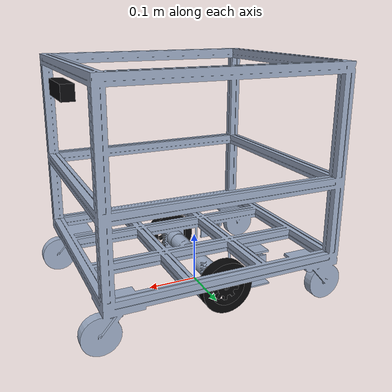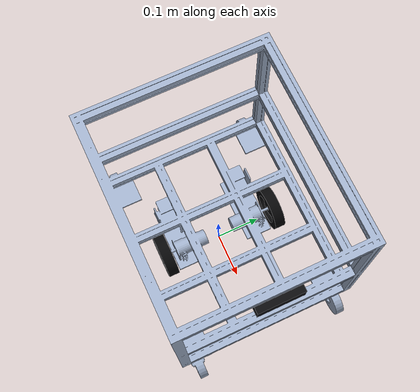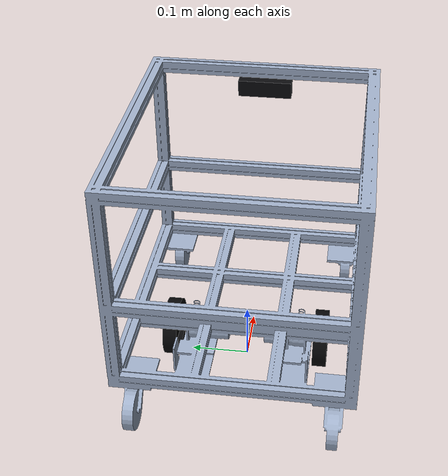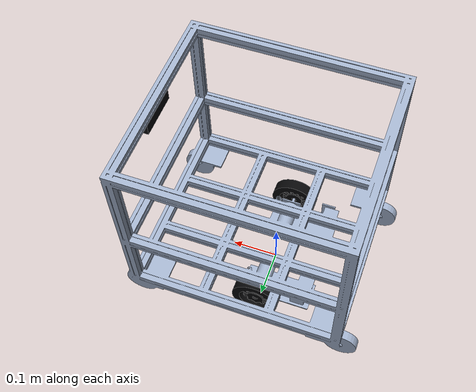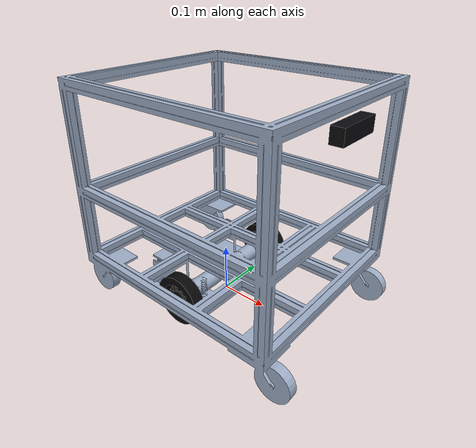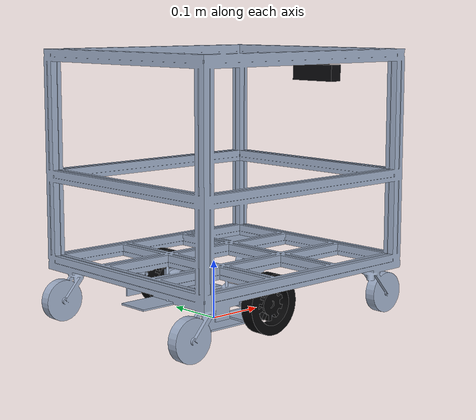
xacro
<?xml version="1.0"?>
<robot xmlns:xacro="http://www.ros.org/wiki/xacro" name="mobile_robot">
  <!-- Managed source. Expanded URDF files are generated artifacts; do not edit or commit them. -->
  <xacro:arg name="base_link_z" default="0.050"/>
  <xacro:arg name="camera_x" default="0.250"/>
  <xacro:arg name="camera_y" default="0.000"/>
  <xacro:arg name="camera_z" default="0.360"/>
  <xacro:arg name="camera_roll" default="0.0"/>
  <xacro:arg name="camera_pitch" default="0.0"/>
  <xacro:arg name="camera_yaw" default="0.0"/>
  <xacro:arg name="camera_depth" default="0.024"/>
  <xacro:arg name="camera_width" default="0.094"/>
  <xacro:arg name="camera_height" default="0.029"/>
  <xacro:arg name="chassis_length" default="0.450"/>
  <xacro:arg name="chassis_width" default="0.400"/>
  <xacro:arg name="chassis_height" default="0.368"/>
  <xacro:arg name="chassis_centre_x" default="0.025"/>
  <xacro:arg name="chassis_centre_y" default="0.000"/>
  <xacro:arg name="chassis_centre_z" default="0.222517313"/>
  <xacro:arg name="wheel_separation" default="0.264"/>
  <xacro:arg name="wheel_radius" default="0.050"/>
  <xacro:arg name="wheel_width" default="0.024"/>
  <xacro:arg name="cart_mesh_x" default="0.025"/>
  <xacro:arg name="cart_mesh_y" default="0.000"/>
  <xacro:arg name="cart_mesh_z" default="-0.043482687"/>
  <xacro:arg name="mesh_scale" default="0.001"/>
  <xacro:arg name="mesh_prefix" default="package://mr_description"/>
  <!-- IMU mount measured 2026-10-31 (config/robot_params.yaml imu_*). RPY -1.0/2.1/177.5 deg in radians. -->
  <xacro:arg name="imu_x" default="0.010"/>
  <xacro:arg name="imu_y" default="-0.160"/>
  <xacro:arg name="imu_z" default="0.090"/>
  <xacro:arg name="imu_roll" default="-0.017453293"/>
  <xacro:arg name="imu_pitch" default="0.036651914"/>
  <xacro:arg name="imu_yaw" default="3.097959422"/>
  <!-- RPLIDAR C1 scan origin (config/robot_params.yaml lidar_*). Yaw 177.5 deg in radians. -->
  <xacro:arg name="lidar_x" default="0.018"/>
  <xacro:arg name="lidar_y" default="-0.004"/>
  <xacro:arg name="lidar_z" default="0.200"/>
  <xacro:arg name="lidar_roll" default="0.0"/>
  <xacro:arg name="lidar_pitch" default="0.0"/>
  <xacro:arg name="lidar_yaw" default="3.097959422"/>
  <!-- 8.6 + 0.5 + 0.5 + 0.2 = measured complete-robot mass 9.8 kg. -->
  <xacro:arg name="chassis_mass" default="8.6"/>
  <xacro:arg name="wheel_mass" default="0.5"/>
  <xacro:arg name="camera_mass" default="0.2"/>

  <xacro:property name="base_link_z_v" value="$(arg base_link_z)"/>
  <xacro:property name="camera_x_v" value="$(arg camera_x)"/>
  <xacro:property name="camera_y_v" value="$(arg camera_y)"/>
  <xacro:property name="camera_z_v" value="$(arg camera_z)"/>
  <xacro:property name="camera_roll_v" value="$(arg camera_roll)"/>
  <xacro:property name="camera_pitch_v" value="$(arg camera_pitch)"/>
  <xacro:property name="camera_yaw_v" value="$(arg camera_yaw)"/>
  <xacro:property name="camera_depth_v" value="$(arg camera_depth)"/>
  <xacro:property name="camera_width_v" value="$(arg camera_width)"/>
  <xacro:property name="camera_height_v" value="$(arg camera_height)"/>
  <xacro:property name="chassis_length_v" value="$(arg chassis_length)"/>
  <xacro:property name="chassis_width_v" value="$(arg chassis_width)"/>
  <xacro:property name="chassis_height_v" value="$(arg chassis_height)"/>
  <xacro:property name="chassis_centre_x_v" value="$(arg chassis_centre_x)"/>
  <xacro:property name="chassis_centre_y_v" value="$(arg chassis_centre_y)"/>
  <xacro:property name="chassis_centre_z_v" value="$(arg chassis_centre_z)"/>
  <xacro:property name="wheel_separation_v" value="$(arg wheel_separation)"/>
  <xacro:property name="wheel_radius_v" value="$(arg wheel_radius)"/>
  <xacro:property name="wheel_width_v" value="$(arg wheel_width)"/>
  <xacro:property name="cart_mesh_x_v" value="$(arg cart_mesh_x)"/>
  <xacro:property name="cart_mesh_y_v" value="$(arg cart_mesh_y)"/>
  <xacro:property name="cart_mesh_z_v" value="$(arg cart_mesh_z)"/>
  <xacro:property name="mesh_scale_v" value="$(arg mesh_scale)"/>
  <xacro:property name="chassis_mass_v" value="$(arg chassis_mass)"/>
  <xacro:property name="wheel_mass_v" value="$(arg wheel_mass)"/>
  <xacro:property name="camera_mass_v" value="$(arg camera_mass)"/>
  <xacro:property name="imu_x_v" value="$(arg imu_x)"/>
  <xacro:property name="imu_y_v" value="$(arg imu_y)"/>
  <xacro:property name="imu_z_v" value="$(arg imu_z)"/>
  <xacro:property name="imu_roll_v" value="$(arg imu_roll)"/>
  <xacro:property name="imu_pitch_v" value="$(arg imu_pitch)"/>
  <xacro:property name="imu_yaw_v" value="$(arg imu_yaw)"/>
  <xacro:property name="lidar_x_v" value="$(arg lidar_x)"/>
  <xacro:property name="lidar_y_v" value="$(arg lidar_y)"/>
  <xacro:property name="lidar_z_v" value="$(arg lidar_z)"/>
  <xacro:property name="lidar_roll_v" value="$(arg lidar_roll)"/>
  <xacro:property name="lidar_pitch_v" value="$(arg lidar_pitch)"/>
  <xacro:property name="lidar_yaw_v" value="$(arg lidar_yaw)"/>

  <material name="aluminium">
    <color rgba="0.62 0.68 0.78 1.0"/>
  </material>
  <material name="rubber">
    <color rgba="0.025 0.025 0.03 1.0"/>
  </material>
  <material name="camera_black">
    <color rgba="0.04 0.04 0.05 1.0"/>
  </material>

  <xacro:macro name="box_inertial" params="mass x y z origin_x origin_y origin_z">
    <inertial>
      <origin xyz="${origin_x} ${origin_y} ${origin_z}" rpy="0 0 0"/>
      <mass value="${mass}"/>
      <inertia
        ixx="${mass * (y * y + z * z) / 12.0}"
        ixy="0.0" ixz="0.0"
        iyy="${mass * (x * x + z * z) / 12.0}"
        iyz="0.0"
        izz="${mass * (x * x + y * y) / 12.0}"/>
    </inertial>
  </xacro:macro>

  <xacro:macro name="drive_wheel" params="side y">
    <link name="${side}_wheel_link">
      <visual>
        <origin xyz="0 0 0" rpy="0 0 0"/>
        <geometry>
          <mesh filename="$(arg mesh_prefix)/meshes/drive_wheel.stl"
                scale="${mesh_scale_v} ${mesh_scale_v} ${mesh_scale_v}"/>
        </geometry>
        <material name="rubber"/>
      </visual>
      <collision>
        <origin xyz="0 0 0" rpy="${pi / 2.0} 0 0"/>
        <geometry>
          <cylinder radius="${wheel_radius_v}" length="${wheel_width_v}"/>
        </geometry>
      </collision>
      <inertial>
        <origin xyz="0 0 0" rpy="0 0 0"/>
        <mass value="${wheel_mass_v}"/>
        <inertia
          ixx="${wheel_mass_v * (3.0 * wheel_radius_v * wheel_radius_v + wheel_width_v * wheel_width_v) / 12.0}"
          ixy="0.0" ixz="0.0"
          iyy="${wheel_mass_v * wheel_radius_v * wheel_radius_v / 2.0}"
          iyz="0.0"
          izz="${wheel_mass_v * (3.0 * wheel_radius_v * wheel_radius_v + wheel_width_v * wheel_width_v) / 12.0}"/>
      </inertial>
    </link>
    <joint name="${side}_wheel_joint" type="continuous">
      <parent link="base_link"/>
      <child link="${side}_wheel_link"/>
      <origin xyz="0 ${y} 0" rpy="0 0 0"/>
      <axis xyz="0 1 0"/>
      <limit effort="15.0" velocity="20.0"/>
      <dynamics damping="0.0" friction="0.0"/>
    </joint>
  </xacro:macro>

  <link name="base_footprint"/>

  <link name="base_link">
    <visual>
      <origin xyz="${cart_mesh_x_v} ${cart_mesh_y_v} ${cart_mesh_z_v}" rpy="0 0 0"/>
      <geometry>
        <mesh filename="$(arg mesh_prefix)/meshes/cart_frame.stl"
              scale="${mesh_scale_v} ${mesh_scale_v} ${mesh_scale_v}"/>
      </geometry>
      <material name="aluminium"/>
    </visual>
    <collision>
      <origin xyz="${chassis_centre_x_v} ${chassis_centre_y_v} ${chassis_centre_z_v}" rpy="0 0 0"/>
      <geometry>
        <box size="${chassis_length_v} ${chassis_width_v} ${chassis_height_v}"/>
      </geometry>
    </collision>
    <xacro:box_inertial
      mass="${chassis_mass_v}"
      x="${chassis_length_v}" y="${chassis_width_v}" z="${chassis_height_v}"
      origin_x="${chassis_centre_x_v}" origin_y="${chassis_centre_y_v}" origin_z="${chassis_centre_z_v}"/>
  </link>

  <joint name="base_footprint_joint" type="fixed">
    <parent link="base_footprint"/>
    <child link="base_link"/>
    <origin xyz="0 0 ${base_link_z_v}" rpy="0 0 0"/>
  </joint>

  <xacro:drive_wheel side="left" y="${wheel_separation_v / 2.0}"/>
  <xacro:drive_wheel side="right" y="${-wheel_separation_v / 2.0}"/>

  <link name="camera_link">
    <visual>
      <origin xyz="0 0 0" rpy="0 0 0"/>
      <geometry>
        <box size="${camera_depth_v} ${camera_width_v} ${camera_height_v}"/>
      </geometry>
      <material name="camera_black"/>
    </visual>
    <collision>
      <origin xyz="0 0 0" rpy="0 0 0"/>
      <geometry>
        <box size="${camera_depth_v} ${camera_width_v} ${camera_height_v}"/>
      </geometry>
    </collision>
    <xacro:box_inertial
      mass="${camera_mass_v}"
      x="${camera_depth_v}" y="${camera_width_v}" z="${camera_height_v}"
      origin_x="0" origin_y="0" origin_z="0"/>
  </link>

  <joint name="camera_joint" type="fixed">
    <parent link="base_link"/>
    <child link="camera_link"/>
    <origin xyz="${camera_x_v} ${camera_y_v} ${camera_z_v}"
            rpy="${camera_roll_v} ${camera_pitch_v} ${camera_yaw_v}"/>
  </joint>

  <link name="camera_optical_frame"/>
  <joint name="camera_optical_joint" type="fixed">
    <parent link="camera_link"/>
    <child link="camera_optical_frame"/>
    <!-- optical +Z=forward, +X=right, +Y=down from robot +X/+Y/+Z -->
    <origin xyz="0 0 0" rpy="${-pi / 2.0} 0 ${-pi / 2.0}"/>
  </joint>

  <link name="imu_link"/>
  <joint name="imu_joint" type="fixed">
    <parent link="base_link"/>
    <child link="imu_link"/>
    <origin xyz="${imu_x_v} ${imu_y_v} ${imu_z_v}"
            rpy="${imu_roll_v} ${imu_pitch_v} ${imu_yaw_v}"/>
  </joint>

  <link name="laser_link"/>
  <joint name="laser_joint" type="fixed">
    <parent link="base_link"/>
    <child link="laser_link"/>
    <origin xyz="${lidar_x_v} ${lidar_y_v} ${lidar_z_v}"
            rpy="${lidar_roll_v} ${lidar_pitch_v} ${lidar_yaw_v}"/>
  </joint>
</robot>
